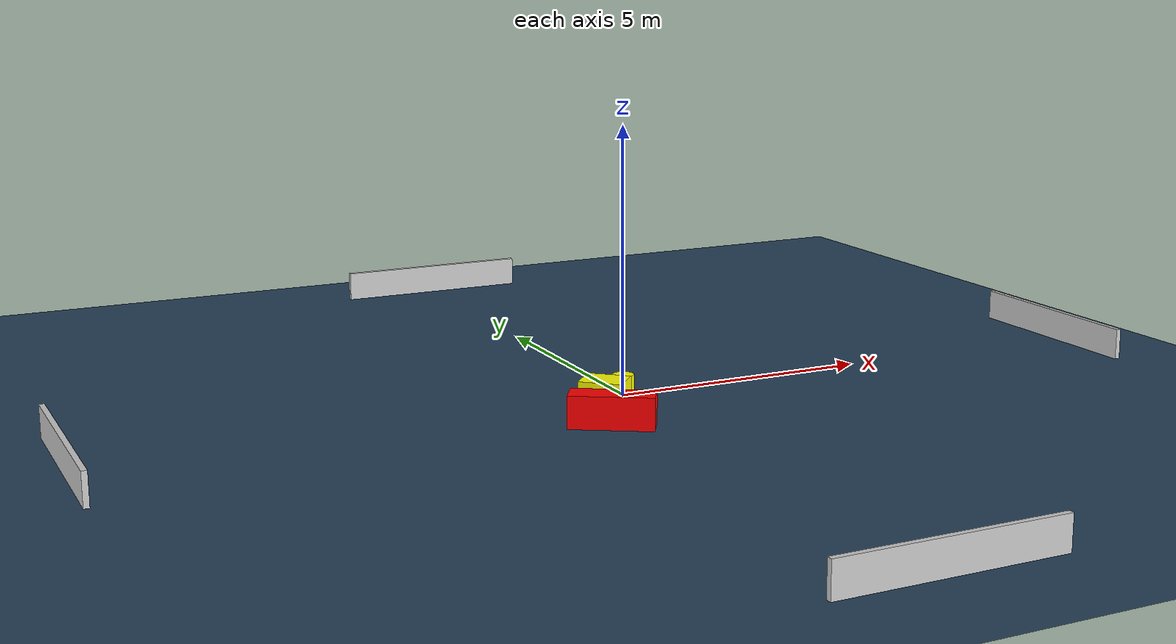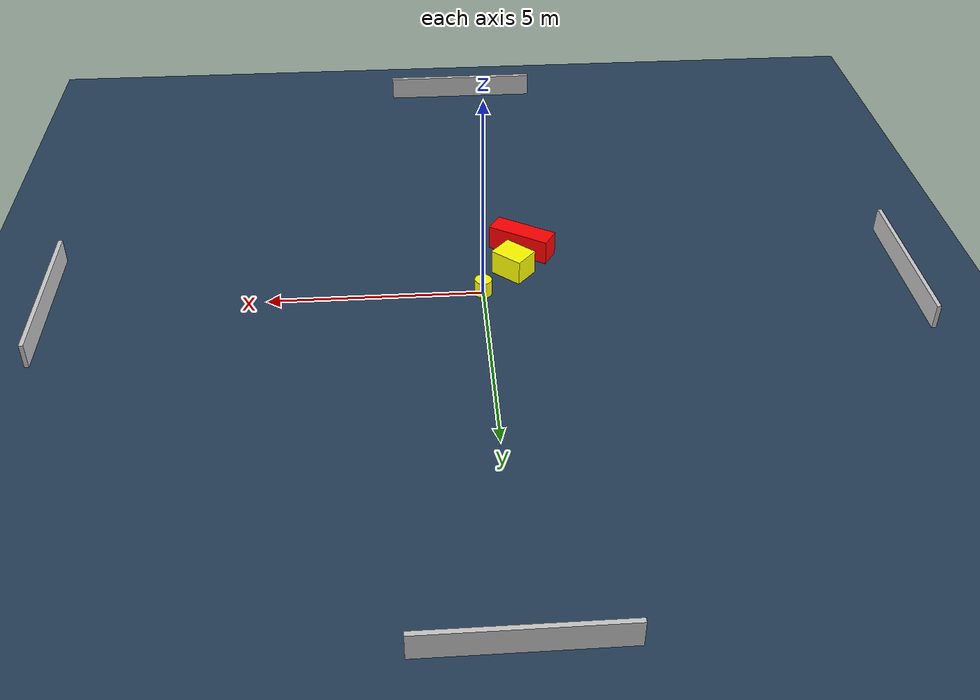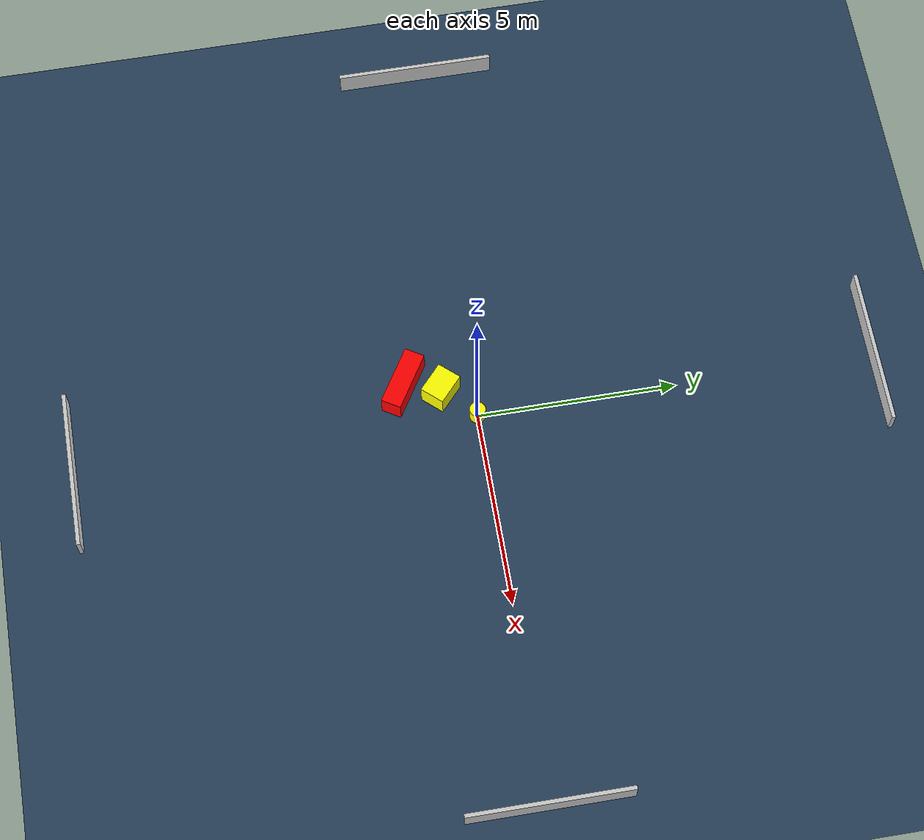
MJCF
<?xml version="1.0" ?>
<mujoco model="generated_environment">
  <option timestep="0.01" integrator="RK4" cone="elliptic"/>
  <default>
    <geom density="1"/>
  </default>
  <asset>
    <texture builtin="gradient" height="3072" name="skybox" rgb1="0.3 0.5 0.7" rgb2="0 0 0" type="skybox" width="512"/>
    <texture builtin="checker" height="300" name="groundplane" rgb1="0.2 0.3 0.4" rgb2="0.1 0.2 0.3" type="2d" width="300"/>
    <material name="groundplane" reflectance="0.2" texrepeat="5 5" texture="groundplane"/>
  </asset>
  <worldbody>
    <light dir="0 0 -1" directional="true" pos="0 0 1.5"/>
    <geom condim="3" friction="0.5 0.005 0.001" material="groundplane" name="floor" pos="0 0 0" size="0 0 0.05" type="plane"/>
    <body name="walls">
      <geom name="wall_1" condim="4" pos="-10.0 0.0 0.3" rgba="0.800000011920929 0.800000011920929 0.800000011920929 1.0" size="0.05 2.0 0.3" type="box"/>
      <geom name="wall_2" condim="4" pos="10.0 0.0 0.3" rgba="0.800000011920929 0.800000011920929 0.800000011920929 1.0" size="0.05 2.0 0.3" type="box"/>
      <geom name="wall_3" condim="4" pos="0.0 -10.0 0.3" rgba="0.800000011920929 0.800000011920929 0.800000011920929 1.0" size="2.0 0.05 0.3" type="box"/>
      <geom name="wall_4" condim="4" pos="0.0 10.0 0.3" rgba="0.800000011920929 0.800000011920929 0.800000011920929 1.0" size="2.0 0.05 0.3" type="box"/>
    </body>
    <body name="robot">
      <joint name="joint_x" type="slide" pos="0 0 0" axis="1 0 0"/>
      <joint name="joint_y" type="slide" pos="0 0 0" axis="0 1 0"/>
      <geom name="robot" type="cylinder" pos="0.0 0.0 0.2" size="0.2 0.2 0.0" mass="5.0" friction="1.0 0.005 0.0001" condim="4" rgba="1.0 1.0 0.0 1.0"/>
    </body>
    <body name="obstacle_1_movable">
      <geom name="obstacle_1_movable" condim="4" pos="-0.7653679333558147 -0.7948157040758513 0.3" euler="0 0 318.2102839385087" friction="0.0 0.005 0.001" rgba="1.0 1.0 0.0 1.0" size="0.4053891570653386 0.3137380612433787 0.3" type="box" mass="0.1"/>
      <joint type="free"/>
    </body>
    <body name="obstacle_2_static">
      <geom name="obstacle_2_static" condim="4" pos="-1.057982436885374 -1.6946678787177278 0.3" euler="0 0 58.43792233776478" friction="0.0 0.005 0.001" rgba="1.0 0.0 0.0 1.0" size="0.2561410778868018 0.7606435595904086 0.3" type="box"/>
    </body>
  </worldbody>
  <actuator>
    <motor name="actuator_x" joint="joint_x" gear="1" ctrlrange="-1 1"/>
    <motor name="actuator_y" joint="joint_y" gear="1" ctrlrange="-1 1"/>
  </actuator>
</mujoco>
